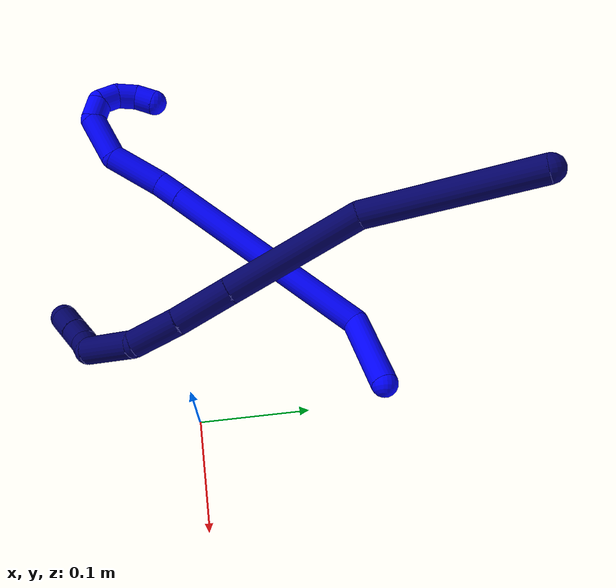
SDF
<sdf version="1.7">
 <world name="default">
  <model name="1">
   <static>0</static>
   <link name="1">
    <collision name="collision-cylinder-e_1_1_4">
     <pose>-0.012231 0.012747 0.034111 -0.357617 -0.324036 0.059067</pose>
     <geometry><cylinder><radius>0.0125</radius><length>0.076828</length></cylinder></geometry>
     <surface>
      <friction><ode><mu>1.16</mu><mu2>1.16</mu2><slip1>0</slip1><slip2>0</slip2></ode></friction>
      <contact><ode><kp>1e+06</kp><kd>1</kd><max_vel>0</max_vel><min_depth>0.001</min_depth></ode></contact>
     </surface>
    </collision>
    <visual name="visual-cylinder-e_1_1_4">
     <pose>-0.012231 0.012747 0.034111 -0.357617 -0.324036 0.059067</pose>
     <geometry><cylinder><radius>0.0125</radius><length>0.076828</length></cylinder></geometry>
     <material><ambient>0 0 1 1</ambient></material>
    </visual>
    <collision name="collision-cylinder-e_2_4_5">
     <pose>-0.104946 0.010531 0.137583 0.212469 -0.848231 -0.096222</pose>
     <geometry><cylinder><radius>0.0125</radius><length>0.214593</length></cylinder></geometry>
     <surface>
      <friction><ode><mu>1.16</mu><mu2>1.16</mu2><slip1>0</slip1><slip2>0</slip2></ode></friction>
      <contact><ode><kp>1e+06</kp><kd>1</kd><max_vel>0</max_vel><min_depth>0.001</min_depth></ode></contact>
     </surface>
    </collision>
    <visual name="visual-cylinder-e_2_4_5">
     <pose>-0.104946 0.010531 0.137583 0.212469 -0.848231 -0.096222</pose>
     <geometry><cylinder><radius>0.0125</radius><length>0.214593</length></cylinder></geometry>
     <material><ambient>0 0 1 1</ambient></material>
    </visual>
    <collision name="collision-cylinder-e_3_5_6">
     <pose>-0.195024 -0.00589 0.215123 0.176338 -0.857061 -0.080724</pose>
     <geometry><cylinder><radius>0.0125</radius><length>0.025381</length></cylinder></geometry>
     <surface>
      <friction><ode><mu>1.16</mu><mu2>1.16</mu2><slip1>0</slip1><slip2>0</slip2></ode></friction>
      <contact><ode><kp>1e+06</kp><kd>1</kd><max_vel>0</max_vel><min_depth>0.001</min_depth></ode></contact>
     </surface>
    </collision>
    <visual name="visual-cylinder-e_3_5_6">
     <pose>-0.195024 -0.00589 0.215123 0.176338 -0.857061 -0.080724</pose>
     <geometry><cylinder><radius>0.0125</radius><length>0.025381</length></cylinder></geometry>
     <material><ambient>0 0 1 1</ambient></material>
    </visual>
    <collision name="collision-cylinder-e_4_6_7">
     <pose>-0.226775 -0.014229 0.238249 0.431494 -0.932027 -0.219569</pose>
     <geometry><cylinder><radius>0.0125</radius><length>0.055199</length></cylinder></geometry>
     <surface>
      <friction><ode><mu>1.16</mu><mu2>1.16</mu2><slip1>0</slip1><slip2>0</slip2></ode></friction>
      <contact><ode><kp>1e+06</kp><kd>1</kd><max_vel>0</max_vel><min_depth>0.001</min_depth></ode></contact>
     </surface>
    </collision>
    <visual name="visual-cylinder-e_4_6_7">
     <pose>-0.226775 -0.014229 0.238249 0.431494 -0.932027 -0.219569</pose>
     <geometry><cylinder><radius>0.0125</radius><length>0.055199</length></cylinder></geometry>
     <material><ambient>0 0 1 1</ambient></material>
    </visual>
    <collision name="collision-cylinder-e_5_7_8">
     <pose>-0.258738 -0.024387 0.273993 0.156212 -0.435857 -0.034659</pose>
     <geometry><cylinder><radius>0.0125</radius><length>0.04645</length></cylinder></geometry>
     <surface>
      <friction><ode><mu>1.16</mu><mu2>1.16</mu2><slip1>0</slip1><slip2>0</slip2></ode></friction>
      <contact><ode><kp>1e+06</kp><kd>1</kd><max_vel>0</max_vel><min_depth>0.001</min_depth></ode></contact>
     </surface>
    </collision>
    <visual name="visual-cylinder-e_5_7_8">
     <pose>-0.258738 -0.024387 0.273993 0.156212 -0.435857 -0.034659</pose>
     <geometry><cylinder><radius>0.0125</radius><length>0.04645</length></cylinder></geometry>
     <material><ambient>0 0 1 1</ambient></material>
    </visual>
    <collision name="collision-cylinder-e_6_8_9">
     <pose>-0.265271 -0.027162 0.305038 -0.048759 0.308704 -0.007588</pose>
     <geometry><cylinder><radius>0.0125</radius><length>0.021538</length></cylinder></geometry>
     <surface>
      <friction><ode><mu>1.16</mu><mu2>1.16</mu2><slip1>0</slip1><slip2>0</slip2></ode></friction>
      <contact><ode><kp>1e+06</kp><kd>1</kd><max_vel>0</max_vel><min_depth>0.001</min_depth></ode></contact>
     </surface>
    </collision>
    <visual name="visual-cylinder-e_6_8_9">
     <pose>-0.265271 -0.027162 0.305038 -0.048759 0.308704 -0.007588</pose>
     <geometry><cylinder><radius>0.0125</radius><length>0.021538</length></cylinder></geometry>
     <material><ambient>0 0 1 1</ambient></material>
    </visual>
    <collision name="collision-cylinder-e_7_9_10">
     <pose>-0.254554 -0.022153 0.320214 -0.741012 0.839569 -0.343325</pose>
     <geometry><cylinder><radius>0.0125</radius><length>0.020005</length></cylinder></geometry>
     <surface>
      <friction><ode><mu>1.16</mu><mu2>1.16</mu2><slip1>0</slip1><slip2>0</slip2></ode></friction>
      <contact><ode><kp>1e+06</kp><kd>1</kd><max_vel>0</max_vel><min_depth>0.001</min_depth></ode></contact>
     </surface>
    </collision>
    <visual name="visual-cylinder-e_7_9_10">
     <pose>-0.254554 -0.022153 0.320214 -0.741012 0.839569 -0.343325</pose>
     <geometry><cylinder><radius>0.0125</radius><length>0.020005</length></cylinder></geometry>
     <material><ambient>0 0 1 1</ambient></material>
    </visual>
    <collision name="collision-cylinder-e_8_10_11">
     <pose>-0.237898 -0.013744 0.325119 -1.57674 1.17023 -1.1757</pose>
     <geometry><cylinder><radius>0.0125</radius><length>0.020005</length></cylinder></geometry>
     <surface>
      <friction><ode><mu>1.16</mu><mu2>1.16</mu2><slip1>0</slip1><slip2>0</slip2></ode></friction>
      <contact><ode><kp>1e+06</kp><kd>1</kd><max_vel>0</max_vel><min_depth>0.001</min_depth></ode></contact>
     </surface>
    </collision>
    <visual name="visual-cylinder-e_8_10_11">
     <pose>-0.237898 -0.013744 0.325119 -1.57674 1.17023 -1.1757</pose>
     <geometry><cylinder><radius>0.0125</radius><length>0.020005</length></cylinder></geometry>
     <material><ambient>0 0 1 1</ambient></material>
    </visual>
    <collision name="collision-cylinder-e_9_11_2">
     <pose>-0.219618 -0.008408 0.321134 -2.79403 1.13587 -2.60462</pose>
     <geometry><cylinder><radius>0.0125</radius><length>0.02</length></cylinder></geometry>
     <surface>
      <friction><ode><mu>1.16</mu><mu2>1.16</mu2><slip1>0</slip1><slip2>0</slip2></ode></friction>
      <contact><ode><kp>1e+06</kp><kd>1</kd><max_vel>0</max_vel><min_depth>0.001</min_depth></ode></contact>
     </surface>
    </collision>
    <visual name="visual-cylinder-e_9_11_2">
     <pose>-0.219618 -0.008408 0.321134 -2.79403 1.13587 -2.60462</pose>
     <geometry><cylinder><radius>0.0125</radius><length>0.02</length></cylinder></geometry>
     <material><ambient>0 0 1 1</ambient></material>
    </visual>
    <collision name="collision-sphere-2">
     <pose>-0.210549 -0.006973 0.317173 0 -0 0</pose>
     <geometry><sphere><radius>0.0125</radius></sphere></geometry>
     <surface>
      <friction><ode><mu>1.16</mu><mu2>1.16</mu2><slip1>0</slip1><slip2>0</slip2></ode></friction>
      <contact><ode><kp>1e+06</kp><kd>1</kd><max_vel>0</max_vel><min_depth>0.001</min_depth></ode></contact>
     </surface>
    </collision>
    <visual name="visual-sphere-2">
     <pose>-0.210549 -0.006973 0.317173 0 -0 0</pose>
     <geometry><sphere><radius>0.0125</radius></sphere></geometry>
     <material><ambient>0 0 1 1</ambient></material>
    </visual>
    <collision name="collision-sphere-11">
     <pose>-0.228687 -0.009843 0.325096 0 -0 0</pose>
     <geometry><sphere><radius>0.0125</radius></sphere></geometry>
     <surface>
      <friction><ode><mu>1.16</mu><mu2>1.16</mu2><slip1>0</slip1><slip2>0</slip2></ode></friction>
      <contact><ode><kp>1e+06</kp><kd>1</kd><max_vel>0</max_vel><min_depth>0.001</min_depth></ode></contact>
     </surface>
    </collision>
    <visual name="visual-sphere-11">
     <pose>-0.228687 -0.009843 0.325096 0 -0 0</pose>
     <geometry><sphere><radius>0.0125</radius></sphere></geometry>
     <material><ambient>0 0 1 1</ambient></material>
    </visual>
    <collision name="collision-sphere-10">
     <pose>-0.247109 -0.017644 0.325142 0 -0 0</pose>
     <geometry><sphere><radius>0.0125</radius></sphere></geometry>
     <surface>
      <friction><ode><mu>1.16</mu><mu2>1.16</mu2><slip1>0</slip1><slip2>0</slip2></ode></friction>
      <contact><ode><kp>1e+06</kp><kd>1</kd><max_vel>0</max_vel><min_depth>0.001</min_depth></ode></contact>
     </surface>
    </collision>
    <visual name="visual-sphere-10">
     <pose>-0.247109 -0.017644 0.325142 0 -0 0</pose>
     <geometry><sphere><radius>0.0125</radius></sphere></geometry>
     <material><ambient>0 0 1 1</ambient></material>
    </visual>
    <collision name="collision-sphere-9">
     <pose>-0.262 -0.026662 0.315286 0 -0 0</pose>
     <geometry><sphere><radius>0.0125</radius></sphere></geometry>
     <surface>
      <friction><ode><mu>1.16</mu><mu2>1.16</mu2><slip1>0</slip1><slip2>0</slip2></ode></friction>
      <contact><ode><kp>1e+06</kp><kd>1</kd><max_vel>0</max_vel><min_depth>0.001</min_depth></ode></contact>
     </surface>
    </collision>
    <visual name="visual-sphere-9">
     <pose>-0.262 -0.026662 0.315286 0 -0 0</pose>
     <geometry><sphere><radius>0.0125</radius></sphere></geometry>
     <material><ambient>0 0 1 1</ambient></material>
    </visual>
    <collision name="collision-sphere-4">
     <pose>-0.024462 0.025494 0.068222 0 -0 0</pose>
     <geometry><sphere><radius>0.0125</radius></sphere></geometry>
     <surface>
      <friction><ode><mu>1.16</mu><mu2>1.16</mu2><slip1>0</slip1><slip2>0</slip2></ode></friction>
      <contact><ode><kp>1e+06</kp><kd>1</kd><max_vel>0</max_vel><min_depth>0.001</min_depth></ode></contact>
     </surface>
    </collision>
    <visual name="visual-sphere-4">
     <pose>-0.024462 0.025494 0.068222 0 -0 0</pose>
     <geometry><sphere><radius>0.0125</radius></sphere></geometry>
     <material><ambient>0 0 1 1</ambient></material>
    </visual>
    <collision name="collision-sphere-1">
     <geometry><sphere><radius>0.0125</radius></sphere></geometry>
     <surface>
      <friction><ode><mu>1.16</mu><mu2>1.16</mu2><slip1>0</slip1><slip2>0</slip2></ode></friction>
      <contact><ode><kp>1e+06</kp><kd>1</kd><max_vel>0</max_vel><min_depth>0.001</min_depth></ode></contact>
     </surface>
    </collision>
    <visual name="visual-sphere-1">
     <geometry><sphere><radius>0.0125</radius></sphere></geometry>
     <material><ambient>0 0 1 1</ambient></material>
    </visual>
    <collision name="collision-sphere-8">
     <pose>-0.268543 -0.027662 0.294791 0 -0 0</pose>
     <geometry><sphere><radius>0.0125</radius></sphere></geometry>
     <surface>
      <friction><ode><mu>1.16</mu><mu2>1.16</mu2><slip1>0</slip1><slip2>0</slip2></ode></friction>
      <contact><ode><kp>1e+06</kp><kd>1</kd><max_vel>0</max_vel><min_depth>0.001</min_depth></ode></contact>
     </surface>
    </collision>
    <visual name="visual-sphere-8">
     <pose>-0.268543 -0.027662 0.294791 0 -0 0</pose>
     <geometry><sphere><radius>0.0125</radius></sphere></geometry>
     <material><ambient>0 0 1 1</ambient></material>
    </visual>
    <collision name="collision-sphere-5">
     <pose>-0.185431 -0.004432 0.206944 0 -0 0</pose>
     <geometry><sphere><radius>0.0125</radius></sphere></geometry>
     <surface>
      <friction><ode><mu>1.16</mu><mu2>1.16</mu2><slip1>0</slip1><slip2>0</slip2></ode></friction>
      <contact><ode><kp>1e+06</kp><kd>1</kd><max_vel>0</max_vel><min_depth>0.001</min_depth></ode></contact>
     </surface>
    </collision>
    <visual name="visual-sphere-5">
     <pose>-0.185431 -0.004432 0.206944 0 -0 0</pose>
     <geometry><sphere><radius>0.0125</radius></sphere></geometry>
     <material><ambient>0 0 1 1</ambient></material>
    </visual>
    <collision name="collision-sphere-6">
     <pose>-0.204617 -0.007347 0.223302 0 -0 0</pose>
     <geometry><sphere><radius>0.0125</radius></sphere></geometry>
     <surface>
      <friction><ode><mu>1.16</mu><mu2>1.16</mu2><slip1>0</slip1><slip2>0</slip2></ode></friction>
      <contact><ode><kp>1e+06</kp><kd>1</kd><max_vel>0</max_vel><min_depth>0.001</min_depth></ode></contact>
     </surface>
    </collision>
    <visual name="visual-sphere-6">
     <pose>-0.204617 -0.007347 0.223302 0 -0 0</pose>
     <geometry><sphere><radius>0.0125</radius></sphere></geometry>
     <material><ambient>0 0 1 1</ambient></material>
    </visual>
    <collision name="collision-sphere-7">
     <pose>-0.248933 -0.021111 0.253196 0 -0 0</pose>
     <geometry><sphere><radius>0.0125</radius></sphere></geometry>
     <surface>
      <friction><ode><mu>1.16</mu><mu2>1.16</mu2><slip1>0</slip1><slip2>0</slip2></ode></friction>
      <contact><ode><kp>1e+06</kp><kd>1</kd><max_vel>0</max_vel><min_depth>0.001</min_depth></ode></contact>
     </surface>
    </collision>
    <visual name="visual-sphere-7">
     <pose>-0.248933 -0.021111 0.253196 0 -0 0</pose>
     <geometry><sphere><radius>0.0125</radius></sphere></geometry>
     <material><ambient>0 0 1 1</ambient></material>
    </visual>
    <inertial>
     <pose>-0.145808 -0.0006 0.178772 0 -0 0</pose>
     <mass>0.5</mass>
     <inertia>
      <ixx>0.000538</ixx>
      <ixy>0</ixy>
      <ixz>0</ixz>
      <iyy>0.000839</iyy>
      <iyz>0</iyz>
      <izz>0.000783</izz>
     </inertia>
    </inertial>
   </link>
   <pose>-0.006132 0.167715 0.039268 -1.53782 -0.207533 1.4989</pose>
  </model>
  <model name="7">
   <static>0</static>
   <link name="7">
    <collision name="collision-cylinder-e_1_1_4">
     <pose>0.029323 -0.050864 -0.052982 2.37658 0.379859 0.891535</pose>
     <geometry><cylinder><radius>0.0125</radius><length>0.158166</length></cylinder></geometry>
     <surface>
      <friction><ode><mu>1.16</mu><mu2>1.16</mu2><slip1>0</slip1><slip2>0</slip2></ode></friction>
      <contact><ode><kp>1e+06</kp><kd>1</kd><max_vel>0</max_vel><min_depth>0.001</min_depth></ode></contact>
     </surface>
    </collision>
    <visual name="visual-cylinder-e_1_1_4">
     <pose>0.029323 -0.050864 -0.052982 2.37658 0.379859 0.891535</pose>
     <geometry><cylinder><radius>0.0125</radius><length>0.158166</length></cylinder></geometry>
     <material><ambient>0.003922 0 0.403922 1</ambient></material>
    </visual>
    <collision name="collision-cylinder-e_2_4_5">
     <pose>0.058061 -0.139212 -0.157055 2.50864 -0.009234 -0.028194</pose>
     <geometry><cylinder><radius>0.0125</radius><length>0.12674</length></cylinder></geometry>
     <surface>
      <friction><ode><mu>1.16</mu><mu2>1.16</mu2><slip1>0</slip1><slip2>0</slip2></ode></friction>
      <contact><ode><kp>1e+06</kp><kd>1</kd><max_vel>0</max_vel><min_depth>0.001</min_depth></ode></contact>
     </surface>
    </collision>
    <visual name="visual-cylinder-e_2_4_5">
     <pose>0.058061 -0.139212 -0.157055 2.50864 -0.009234 -0.028194</pose>
     <geometry><cylinder><radius>0.0125</radius><length>0.12674</length></cylinder></geometry>
     <material><ambient>0.003922 0 0.403922 1</ambient></material>
    </visual>
    <collision name="collision-cylinder-e_3_5_6">
     <pose>0.057204 -0.192477 -0.229267 2.49986 -0.010307 -0.031012</pose>
     <geometry><cylinder><radius>0.0125</radius><length>0.052731</length></cylinder></geometry>
     <surface>
      <friction><ode><mu>1.16</mu><mu2>1.16</mu2><slip1>0</slip1><slip2>0</slip2></ode></friction>
      <contact><ode><kp>1e+06</kp><kd>1</kd><max_vel>0</max_vel><min_depth>0.001</min_depth></ode></contact>
     </surface>
    </collision>
    <visual name="visual-cylinder-e_3_5_6">
     <pose>0.057204 -0.192477 -0.229267 2.49986 -0.010307 -0.031012</pose>
     <geometry><cylinder><radius>0.0125</radius><length>0.052731</length></cylinder></geometry>
     <material><ambient>0.003922 0 0.403922 1</ambient></material>
    </visual>
    <collision name="collision-cylinder-e_4_6_7">
     <pose>0.058118 -0.221452 -0.268047 2.49997 0.053715 0.16134</pose>
     <geometry><cylinder><radius>0.0125</radius><length>0.044154</length></cylinder></geometry>
     <surface>
      <friction><ode><mu>1.16</mu><mu2>1.16</mu2><slip1>0</slip1><slip2>0</slip2></ode></friction>
      <contact><ode><kp>1e+06</kp><kd>1</kd><max_vel>0</max_vel><min_depth>0.001</min_depth></ode></contact>
     </surface>
    </collision>
    <visual name="visual-cylinder-e_4_6_7">
     <pose>0.058118 -0.221452 -0.268047 2.49997 0.053715 0.16134</pose>
     <geometry><cylinder><radius>0.0125</radius><length>0.044154</length></cylinder></geometry>
     <material><ambient>0.003922 0 0.403922 1</ambient></material>
    </visual>
    <collision name="collision-cylinder-e_5_7_8">
     <pose>0.072699 -0.255771 -0.299391 2.14556 0.489096 0.860536</pose>
     <geometry><cylinder><radius>0.0125</radius><length>0.057024</length></cylinder></geometry>
     <surface>
      <friction><ode><mu>1.16</mu><mu2>1.16</mu2><slip1>0</slip1><slip2>0</slip2></ode></friction>
      <contact><ode><kp>1e+06</kp><kd>1</kd><max_vel>0</max_vel><min_depth>0.001</min_depth></ode></contact>
     </surface>
    </collision>
    <visual name="visual-cylinder-e_5_7_8">
     <pose>0.072699 -0.255771 -0.299391 2.14556 0.489096 0.860536</pose>
     <geometry><cylinder><radius>0.0125</radius><length>0.057024</length></cylinder></geometry>
     <material><ambient>0.003922 0 0.403922 1</ambient></material>
    </visual>
    <collision name="collision-cylinder-e_6_8_9">
     <pose>0.094051 -0.282934 -0.311951 1.38693 0.91342 0.775465</pose>
     <geometry><cylinder><radius>0.0125</radius><length>0.020103</length></cylinder></geometry>
     <surface>
      <friction><ode><mu>1.16</mu><mu2>1.16</mu2><slip1>0</slip1><slip2>0</slip2></ode></friction>
      <contact><ode><kp>1e+06</kp><kd>1</kd><max_vel>0</max_vel><min_depth>0.001</min_depth></ode></contact>
     </surface>
    </collision>
    <visual name="visual-cylinder-e_6_8_9">
     <pose>0.094051 -0.282934 -0.311951 1.38693 0.91342 0.775465</pose>
     <geometry><cylinder><radius>0.0125</radius><length>0.020103</length></cylinder></geometry>
     <material><ambient>0.003922 0 0.403922 1</ambient></material>
    </visual>
    <collision name="collision-cylinder-e_7_9_10">
     <pose>0.111394 -0.291961 -0.312623 2.11181 1.21518 1.77551</pose>
     <geometry><cylinder><radius>0.0125</radius><length>0.020025</length></cylinder></geometry>
     <surface>
      <friction><ode><mu>1.16</mu><mu2>1.16</mu2><slip1>0</slip1><slip2>0</slip2></ode></friction>
      <contact><ode><kp>1e+06</kp><kd>1</kd><max_vel>0</max_vel><min_depth>0.001</min_depth></ode></contact>
     </surface>
    </collision>
    <visual name="visual-cylinder-e_7_9_10">
     <pose>0.111394 -0.291961 -0.312623 2.11181 1.21518 1.77551</pose>
     <geometry><cylinder><radius>0.0125</radius><length>0.020025</length></cylinder></geometry>
     <material><ambient>0.003922 0 0.403922 1</ambient></material>
    </visual>
    <collision name="collision-cylinder-e_8_10_2">
     <pose>0.130584 -0.298425 -0.316048 2.00918 1.19762 1.64173</pose>
     <geometry><cylinder><radius>0.0125</radius><length>0.021057</length></cylinder></geometry>
     <surface>
      <friction><ode><mu>1.16</mu><mu2>1.16</mu2><slip1>0</slip1><slip2>0</slip2></ode></friction>
      <contact><ode><kp>1e+06</kp><kd>1</kd><max_vel>0</max_vel><min_depth>0.001</min_depth></ode></contact>
     </surface>
    </collision>
    <visual name="visual-cylinder-e_8_10_2">
     <pose>0.130584 -0.298425 -0.316048 2.00918 1.19762 1.64173</pose>
     <geometry><cylinder><radius>0.0125</radius><length>0.021057</length></cylinder></geometry>
     <material><ambient>0.003922 0 0.403922 1</ambient></material>
    </visual>
    <collision name="collision-sphere-2">
     <pose>0.140388 -0.3019 -0.317677 0 -0 0</pose>
     <geometry><sphere><radius>0.0125</radius></sphere></geometry>
     <surface>
      <friction><ode><mu>1.16</mu><mu2>1.16</mu2><slip1>0</slip1><slip2>0</slip2></ode></friction>
      <contact><ode><kp>1e+06</kp><kd>1</kd><max_vel>0</max_vel><min_depth>0.001</min_depth></ode></contact>
     </surface>
    </collision>
    <visual name="visual-sphere-2">
     <pose>0.140388 -0.3019 -0.317677 0 -0 0</pose>
     <geometry><sphere><radius>0.0125</radius></sphere></geometry>
     <material><ambient>0.003922 0 0.403922 1</ambient></material>
    </visual>
    <collision name="collision-sphere-10">
     <pose>0.12078 -0.294949 -0.314418 0 -0 0</pose>
     <geometry><sphere><radius>0.0125</radius></sphere></geometry>
     <surface>
      <friction><ode><mu>1.16</mu><mu2>1.16</mu2><slip1>0</slip1><slip2>0</slip2></ode></friction>
      <contact><ode><kp>1e+06</kp><kd>1</kd><max_vel>0</max_vel><min_depth>0.001</min_depth></ode></contact>
     </surface>
    </collision>
    <visual name="visual-sphere-10">
     <pose>0.12078 -0.294949 -0.314418 0 -0 0</pose>
     <geometry><sphere><radius>0.0125</radius></sphere></geometry>
     <material><ambient>0.003922 0 0.403922 1</ambient></material>
    </visual>
    <collision name="collision-sphere-9">
     <pose>0.102008 -0.288973 -0.310828 0 -0 0</pose>
     <geometry><sphere><radius>0.0125</radius></sphere></geometry>
     <surface>
      <friction><ode><mu>1.16</mu><mu2>1.16</mu2><slip1>0</slip1><slip2>0</slip2></ode></friction>
      <contact><ode><kp>1e+06</kp><kd>1</kd><max_vel>0</max_vel><min_depth>0.001</min_depth></ode></contact>
     </surface>
    </collision>
    <visual name="visual-sphere-9">
     <pose>0.102008 -0.288973 -0.310828 0 -0 0</pose>
     <geometry><sphere><radius>0.0125</radius></sphere></geometry>
     <material><ambient>0.003922 0 0.403922 1</ambient></material>
    </visual>
    <collision name="collision-sphere-4">
     <pose>0.058646 -0.101728 -0.105964 0 -0 0</pose>
     <geometry><sphere><radius>0.0125</radius></sphere></geometry>
     <surface>
      <friction><ode><mu>1.16</mu><mu2>1.16</mu2><slip1>0</slip1><slip2>0</slip2></ode></friction>
      <contact><ode><kp>1e+06</kp><kd>1</kd><max_vel>0</max_vel><min_depth>0.001</min_depth></ode></contact>
     </surface>
    </collision>
    <visual name="visual-sphere-4">
     <pose>0.058646 -0.101728 -0.105964 0 -0 0</pose>
     <geometry><sphere><radius>0.0125</radius></sphere></geometry>
     <material><ambient>0.003922 0 0.403922 1</ambient></material>
    </visual>
    <collision name="collision-sphere-1">
     <geometry><sphere><radius>0.0125</radius></sphere></geometry>
     <surface>
      <friction><ode><mu>1.16</mu><mu2>1.16</mu2><slip1>0</slip1><slip2>0</slip2></ode></friction>
      <contact><ode><kp>1e+06</kp><kd>1</kd><max_vel>0</max_vel><min_depth>0.001</min_depth></ode></contact>
     </surface>
    </collision>
    <visual name="visual-sphere-1">
     <geometry><sphere><radius>0.0125</radius></sphere></geometry>
     <material><ambient>0.003922 0 0.403922 1</ambient></material>
    </visual>
    <collision name="collision-sphere-8">
     <pose>0.086094 -0.276896 -0.313073 0 -0 0</pose>
     <geometry><sphere><radius>0.0125</radius></sphere></geometry>
     <surface>
      <friction><ode><mu>1.16</mu><mu2>1.16</mu2><slip1>0</slip1><slip2>0</slip2></ode></friction>
      <contact><ode><kp>1e+06</kp><kd>1</kd><max_vel>0</max_vel><min_depth>0.001</min_depth></ode></contact>
     </surface>
    </collision>
    <visual name="visual-sphere-8">
     <pose>0.086094 -0.276896 -0.313073 0 -0 0</pose>
     <geometry><sphere><radius>0.0125</radius></sphere></geometry>
     <material><ambient>0.003922 0 0.403922 1</ambient></material>
    </visual>
    <collision name="collision-sphere-5">
     <pose>0.057476 -0.176696 -0.208147 0 -0 0</pose>
     <geometry><sphere><radius>0.0125</radius></sphere></geometry>
     <surface>
      <friction><ode><mu>1.16</mu><mu2>1.16</mu2><slip1>0</slip1><slip2>0</slip2></ode></friction>
      <contact><ode><kp>1e+06</kp><kd>1</kd><max_vel>0</max_vel><min_depth>0.001</min_depth></ode></contact>
     </surface>
    </collision>
    <visual name="visual-sphere-5">
     <pose>0.057476 -0.176696 -0.208147 0 -0 0</pose>
     <geometry><sphere><radius>0.0125</radius></sphere></geometry>
     <material><ambient>0.003922 0 0.403922 1</ambient></material>
    </visual>
    <collision name="collision-sphere-6">
     <pose>0.056932 -0.208258 -0.250386 0 -0 0</pose>
     <geometry><sphere><radius>0.0125</radius></sphere></geometry>
     <surface>
      <friction><ode><mu>1.16</mu><mu2>1.16</mu2><slip1>0</slip1><slip2>0</slip2></ode></friction>
      <contact><ode><kp>1e+06</kp><kd>1</kd><max_vel>0</max_vel><min_depth>0.001</min_depth></ode></contact>
     </surface>
    </collision>
    <visual name="visual-sphere-6">
     <pose>0.056932 -0.208258 -0.250386 0 -0 0</pose>
     <geometry><sphere><radius>0.0125</radius></sphere></geometry>
     <material><ambient>0.003922 0 0.403922 1</ambient></material>
    </visual>
    <collision name="collision-sphere-7">
     <pose>0.059303 -0.234646 -0.285708 0 -0 0</pose>
     <geometry><sphere><radius>0.0125</radius></sphere></geometry>
     <surface>
      <friction><ode><mu>1.16</mu><mu2>1.16</mu2><slip1>0</slip1><slip2>0</slip2></ode></friction>
      <contact><ode><kp>1e+06</kp><kd>1</kd><max_vel>0</max_vel><min_depth>0.001</min_depth></ode></contact>
     </surface>
    </collision>
    <visual name="visual-sphere-7">
     <pose>0.059303 -0.234646 -0.285708 0 -0 0</pose>
     <geometry><sphere><radius>0.0125</radius></sphere></geometry>
     <material><ambient>0.003922 0 0.403922 1</ambient></material>
    </visual>
    <inertial>
     <pose>0.057192 -0.156039 -0.176938 0 -0 0</pose>
     <mass>0.5</mass>
     <inertia>
      <ixx>0.000667</ixx>
      <ixy>0</ixy>
      <ixz>0</ixz>
      <iyy>-1.3e-05</iyy>
      <iyz>0</iyz>
      <izz>0.000188</izz>
     </inertia>
    </inertial>
   </link>
   <pose>-0.113706 0.296299 0.210986 1.89929 0.126249 -2.85258</pose>
  </model>
 </world>
</sdf>
